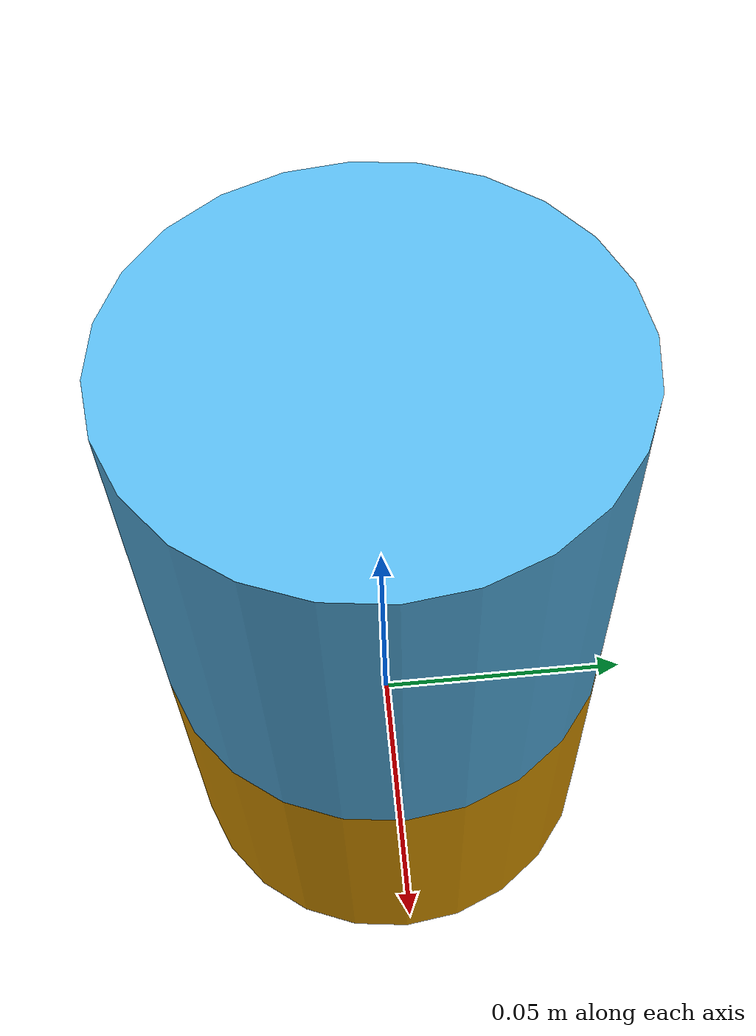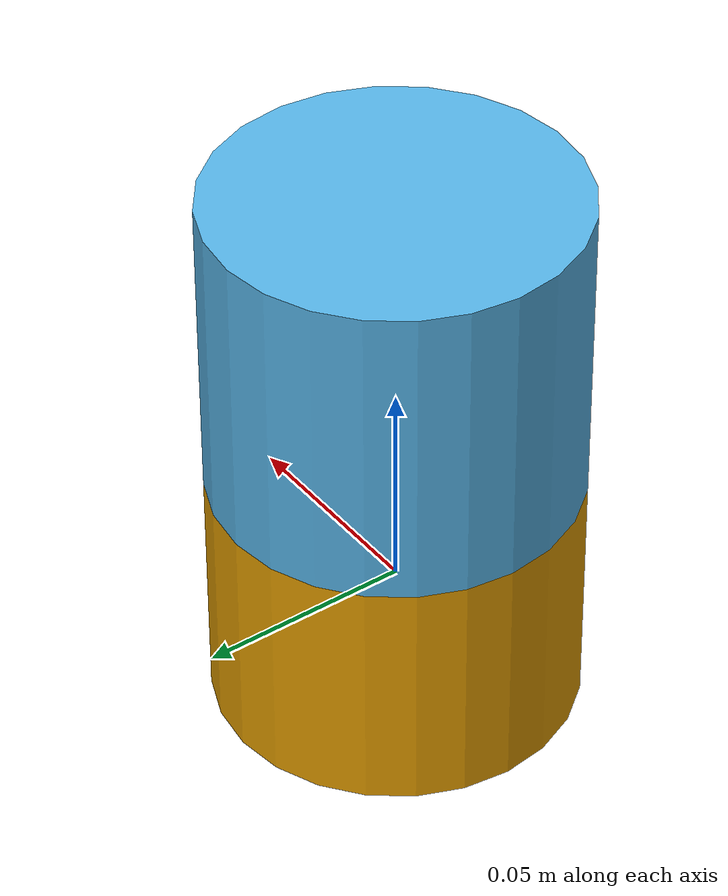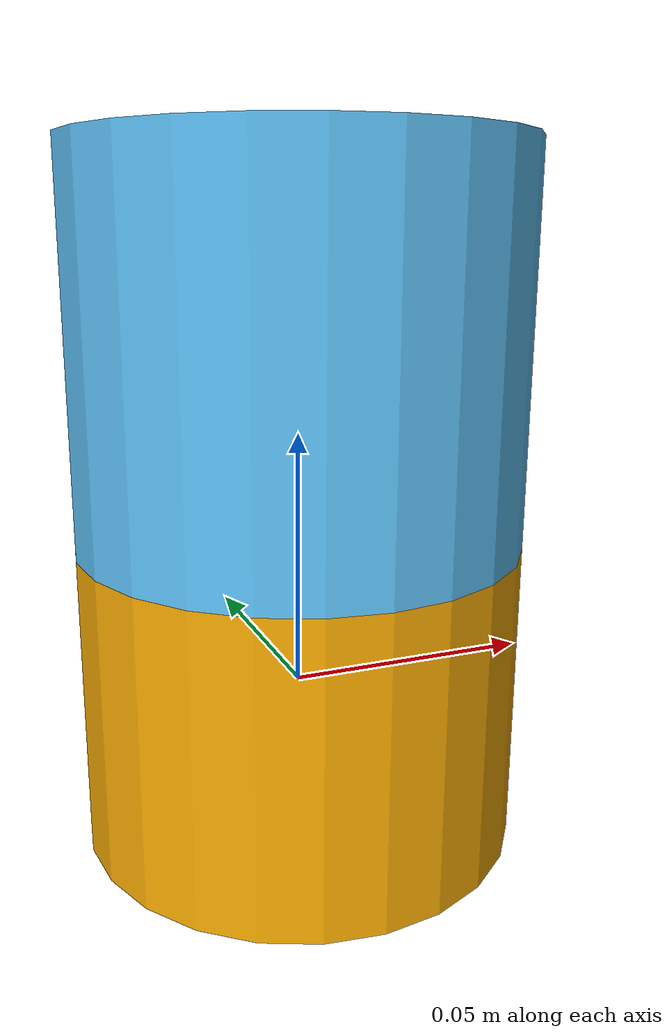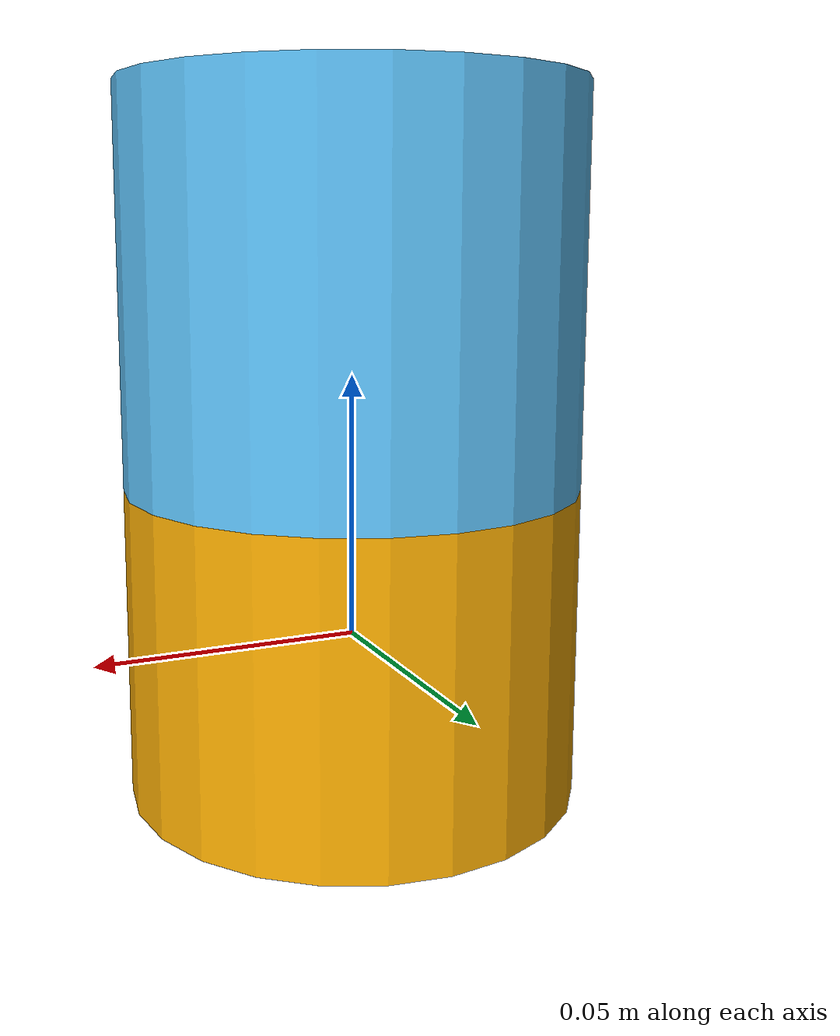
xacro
<?xml version="1.0"?>
<robot name="generic_lidar" xmlns:xacro="http://www.ros.org/wiki/xacro">
    <!-- All distance/length variables are in meters -->
    <!-- Lidar base variables -->
    <xacro:property name="baseRadius" value="0.04267"/>
    <xacro:property name="baseLength" value="0.05867"/>
    <xacro:property name="baseMass" value="1.2"/>
    <!-- Lidar top variables -->
    <xacro:property name="topRadius" value="0.04267"/>
    <xacro:property name="topLength" value="0.07357"/>
    <xacro:property name="topMass" value="0.1"/>
    <!-- Sensor variables -->
    <xacro:property name="numBeams" value="32"/>
    <xacro:property name="minBeamDistance" value="0.05"/>
    <xacro:property name="maxBeamDistance" value="70"/>
    <!-- Give the base link a unique name -->
    <link name="base">
        <inertial>
            <mass value="${baseMass}"/>
            <!-- TODO: calculate inertia based on mass -->
            <inertia ixx="0.001087473" iyy="0.001087473" izz="0.001092437" ixy="0" ixz="0" iyz="0"/>
        </inertial>
        <!-- Geometries taken from base variables -->
        <collision>
            <!-- Offset the base by half the length of the cylinder -->
            <geometry>
                <cylinder radius="${baseRadius}" length="${baseLength}"/>
            </geometry>
        </collision>
        <!--Visuals and collision geometries will match-->
        <visual>
            <!-- Offset the base by half the length of the cylinder -->
            <geometry>
                <cylinder radius="${baseRadius}" length="${baseLength}"/>
            </geometry>
        </visual>
    </link>
    <!-- Give the base link a unique name -->
    <link name="top">
        <inertial>
            <mass value="${topMass}"/>
            <!-- TODO: calculate inertia based on mass -->
            <inertia ixx="0.000090623" iyy ="0.000090623" izz="0.000091036" ixy="0" ixz="0" iyz="0"/>
        </inertial>
        <!-- Geometries taken from top variables -->
        <collision>
            <!-- Vertically offset the top cylinder by the height of the bottom
        cylinder and half the height of this cylinder. -->
            <origin xyz="0 0 ${topLength/2}" rpy="0 0 0"/>
            <geometry>
                <cylinder radius="${baseRadius}" length="${topLength}"/>
            </geometry>
        </collision>
        <!--Visuals and collision geometries will match-->
        <visual>
            <!-- Vertically offset the top cylinder by the height of the bottom
        cylinder and half the height of this cylinder. -->
            <origin xyz="0 0 ${topLength/2}" rpy="0 0 0"/>
            <geometry>
                <cylinder radius="${baseRadius}" length="${topLength}"/>
            </geometry>
        </visual>
    </link>
    <!-- Each joint must have a unique name -->
    <joint type="revolute" name="joint">
        <!-- Position the joint at the bottom of the top link -->
        <origin xyz="0 0 ${baseLength/2}" rpy="0 0 0"/>
        <parent link="base"/>
        <child link="top"/>
        <!-- The axis defines the joint's degree of freedom -->
        <axis xyz="0 0 1"/>
        <!-- Limit refers to the range of motion of the joint, these values need to be looked at -->
        <limit effort="30" velocity="100.0" lower="-10000000000000000" upper="10000000000000000"/>
    </joint>

    <!-- Gazebo specific elements -->
    <!-- Lidar gazebo plugin -->
    <gazebo>
        <plugin name="lidar_control" filename="liblidar_plugin.so">
            <velocity>2</velocity>
        </plugin>
    </gazebo>
    <!-- ray sensor for lidar -->
    <gazebo reference="top">
        <sensor type="ray" name="sensor">
            <pose>0 0 ${topLength/2} 0 0 0</pose>
            <!-- Enable visualization to see the rays in the GUI -->
            <visualize>true</visualize>
            <!-- Set the update rate of the sensor -->
            <update_rate>30</update_rate>
            <ray>
                <!-- The scan element contains the horizontal and vertical beams.
       We are leaving out the vertical beams for this tutorial. -->
                <scan>
                    <!-- The vertical beams -->
                    <vertical>
                        <samples>${numBeams}</samples>
                        <!-- Resolution is multiplied by samples to determine number of
           simulated beams vs interpolated beams. See: http://sdformat.org/spec?ver=1.6&elem=sensor#horizontal_resolution
           -->
                        <resolution>1</resolution>
                        <!-- Minimum angle in radians -->
                        <min_angle>-0.53529248</min_angle>
                        <!-- Maximum angle in radians -->
                        <max_angle>0.18622663</max_angle>
                    </vertical>
                </scan>
                <!-- Range defines characteristics of an individual beam -->
                <range>
                    <!-- Minimum distance of the beam -->
                    <min>${minBeamDistance}</min>
                    <!-- Maximum distance of the beam -->
                    <max>${maxBeamDistance}</max>
                    <!-- Linear resolution of the beam -->
                    <resolution>0.02</resolution>
                </range>
            </ray>
        </sensor>
    </gazebo>
</robot>
